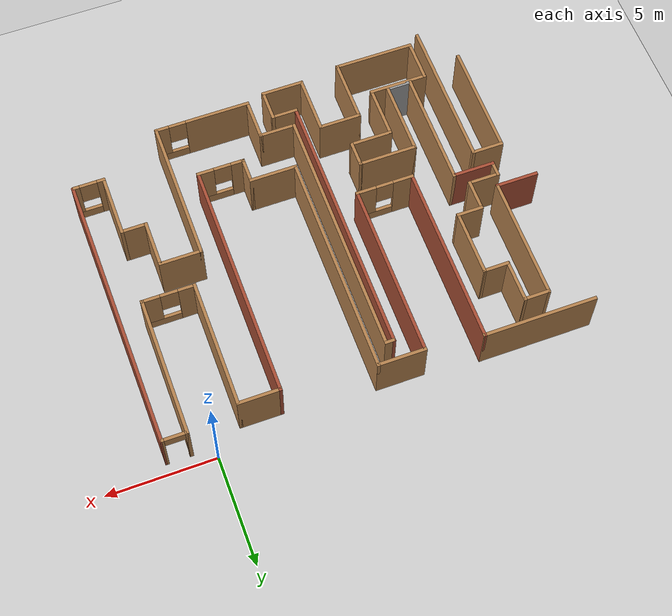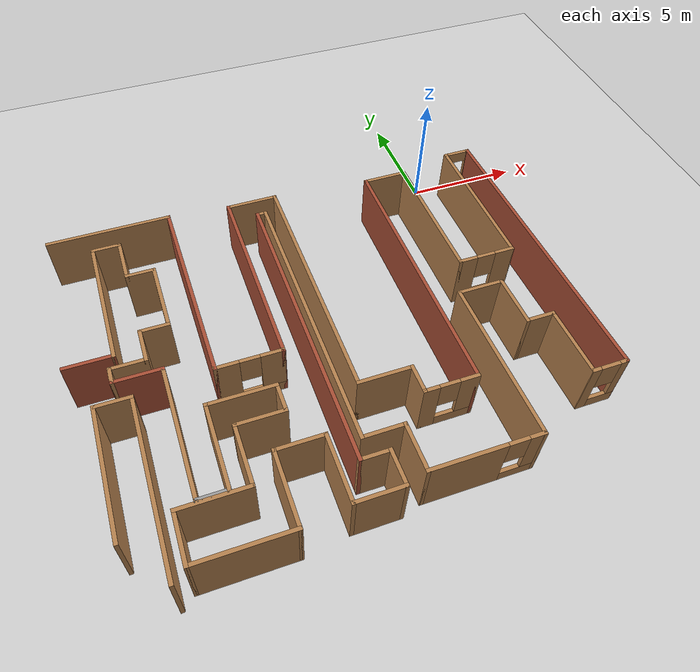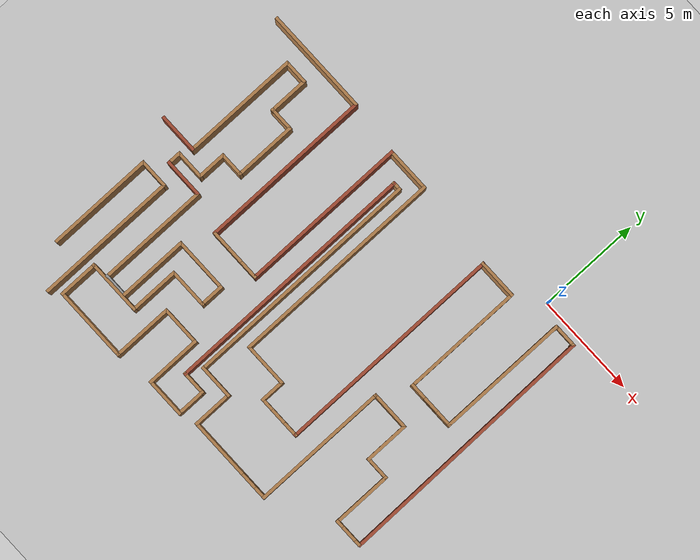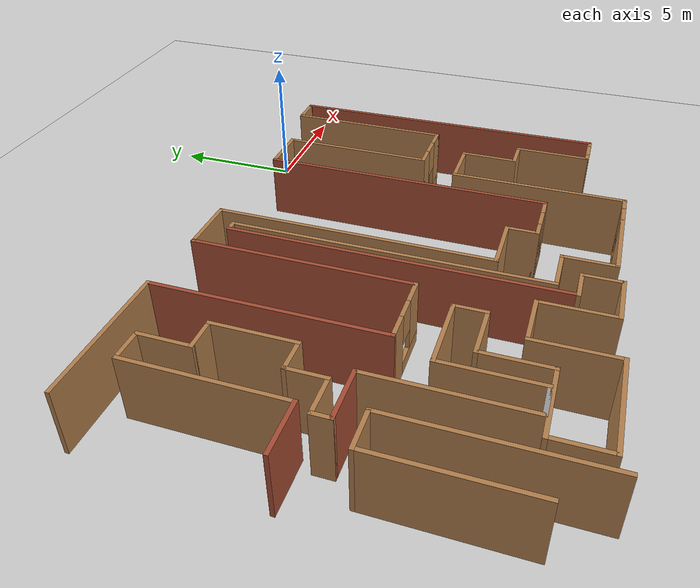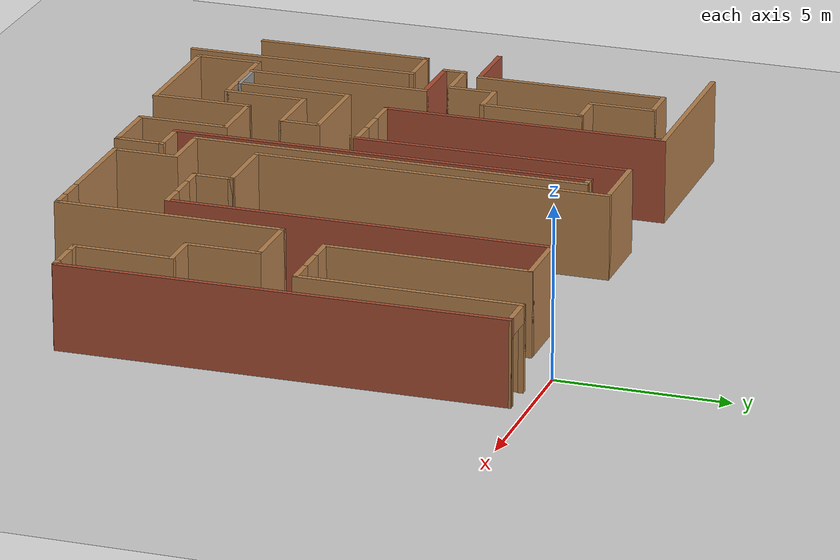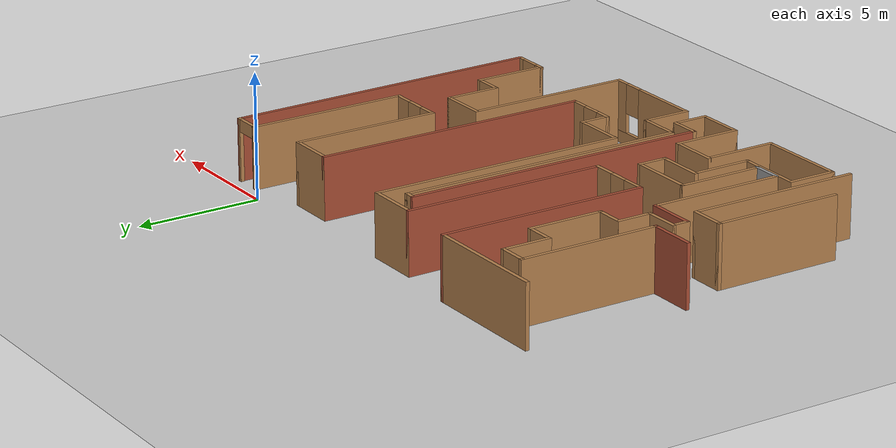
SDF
<sdf version="1.7">
 <world name="default">
  <model name="ground_plane">
   <static>1</static>
   <link name="link">
    <collision name="collision">
     <geometry><plane><normal>0 0 1</normal><size>100 100</size></plane></geometry>
     <surface><friction><ode><mu>100</mu><mu2>50</mu2></ode></friction></surface>
    </collision>
    <visual name="visual">
     <cast_shadows>0</cast_shadows>
     <geometry><plane><normal>0 0 1</normal><size>100 100</size></plane></geometry>
     <material>
      <script><uri>file://media/materials/scripts/gazebo.material</uri><name>Gazebo/Grey</name></script>
     </material>
    </visual>
   </link>
  </model>
  <model name="simple_maze">
   <pose>-16.3821 -8.2673 0 0 -0 0</pose>
   <link name="Wall_100">
    <collision name="Wall_100_Collision">
     <geometry><box><size>1.25 0.15 2.5</size></box></geometry>
     <pose>0 0 1.25 0 -0 0</pose>
    </collision>
    <visual name="Wall_100_Visual">
     <pose>0 0 1.25 0 -0 0</pose>
     <geometry><box><size>1.25 0.15 2.5</size></box></geometry>
     <material>
      <script><uri>file://media/materials/scripts/gazebo.material</uri><name>Gazebo/Wood</name></script>
      <ambient>1 1 1 1</ambient>
     </material>
     <meta><layer>0</layer></meta>
    </visual>
    <pose>2.5834 2.04227 0 0 -0 3.14159</pose>
   </link>
   <link name="Wall_101">
    <collision name="Wall_101_Collision">
     <geometry><box><size>1.5 0.15 2.5</size></box></geometry>
     <pose>0 0 1.25 0 -0 0</pose>
    </collision>
    <visual name="Wall_101_Visual">
     <pose>0 0 1.25 0 -0 0</pose>
     <geometry><box><size>1.5 0.15 2.5</size></box></geometry>
     <material>
      <script><uri>file://media/materials/scripts/gazebo.material</uri><name>Gazebo/Wood</name></script>
      <ambient>1 1 1 1</ambient>
     </material>
     <meta><layer>0</layer></meta>
    </visual>
    <pose>2.0334 1.36727 0 0 -0 -1.5708</pose>
   </link>
   <link name="Wall_102">
    <collision name="Wall_102_Collision">
     <geometry><box><size>1.5 0.15 2.5</size></box></geometry>
     <pose>0 0 1.25 0 -0 0</pose>
    </collision>
    <visual name="Wall_102_Visual">
     <pose>0 0 1.25 0 -0 0</pose>
     <geometry><box><size>1.5 0.15 2.5</size></box></geometry>
     <material>
      <script><uri>file://media/materials/scripts/gazebo.material</uri><name>Gazebo/Wood</name></script>
      <ambient>1 1 1 1</ambient>
     </material>
     <meta><layer>0</layer></meta>
    </visual>
    <pose>1.3584 0.692271 0 0 -0 3.14159</pose>
   </link>
   <link name="Wall_103">
    <collision name="Wall_103_Collision">
     <geometry><box><size>0.75 0.15 2.5</size></box></geometry>
     <pose>0 0 1.25 0 -0 0</pose>
    </collision>
    <visual name="Wall_103_Visual">
     <pose>0 0 1.25 0 -0 0</pose>
     <geometry><box><size>0.75 0.15 2.5</size></box></geometry>
     <material>
      <script><uri>file://media/materials/scripts/gazebo.material</uri><name>Gazebo/Wood</name></script>
      <ambient>1 1 1 1</ambient>
     </material>
     <meta><layer>0</layer></meta>
    </visual>
    <pose>0.683398 0.392271 0 0 -0 -1.5708</pose>
   </link>
   <link name="Wall_104">
    <collision name="Wall_104_Collision">
     <geometry><box><size>2 0.15 2.5</size></box></geometry>
     <pose>0 0 1.25 0 -0 0</pose>
    </collision>
    <visual name="Wall_104_Visual">
     <pose>0 0 1.25 0 -0 0</pose>
     <geometry><box><size>2 0.15 2.5</size></box></geometry>
     <material>
      <script><uri>file://media/materials/scripts/gazebo.material</uri><name>Gazebo/Bricks</name></script>
      <ambient>1 1 1 1</ambient>
     </material>
     <meta><layer>0</layer></meta>
    </visual>
    <pose>1.6084 0.092271 0 0 -0 0</pose>
   </link>
   <link name="Wall_105">
    <collision name="Wall_105_Collision">
     <geometry><box><size>5.5 0.15 2.5</size></box></geometry>
     <pose>0 0 1.25 0 -0 0</pose>
    </collision>
    <visual name="Wall_105_Visual">
     <pose>0 0 1.25 0 -0 0</pose>
     <geometry><box><size>5.5 0.15 2.5</size></box></geometry>
     <material>
      <script><uri>file://media/materials/scripts/gazebo.material</uri><name>Gazebo/Wood</name></script>
      <ambient>1 1 1 1</ambient>
     </material>
     <meta><layer>0</layer></meta>
    </visual>
    <pose>2.5334 -2.58273 0 0 -0 -1.5708</pose>
   </link>
   <link name="Wall_106">
    <collision name="Wall_106_Collision">
     <geometry><box><size>1.25 0.15 2.5</size></box></geometry>
     <pose>0 0 1.25 0 -0 0</pose>
    </collision>
    <visual name="Wall_106_Visual">
     <pose>0 0 1.25 0 -0 0</pose>
     <geometry><box><size>1.25 0.15 2.5</size></box></geometry>
     <material>
      <script><uri>file://media/materials/scripts/gazebo.material</uri><name>Gazebo/Grey</name></script>
      <ambient>1 1 1 1</ambient>
     </material>
     <meta><layer>0</layer></meta>
    </visual>
    <pose>3.0834 -5.25773 0 0 -0 0</pose>
   </link>
   <link name="Wall_107">
    <collision name="Wall_107_Collision">
     <geometry><box><size>3.5 0.15 2.5</size></box></geometry>
     <pose>0 0 1.25 0 -0 0</pose>
    </collision>
    <visual name="Wall_107_Visual">
     <pose>0 0 1.25 0 -0 0</pose>
     <geometry><box><size>3.5 0.15 2.5</size></box></geometry>
     <material>
      <script><uri>file://media/materials/scripts/gazebo.material</uri><name>Gazebo/Wood</name></script>
      <ambient>1 1 1 1</ambient>
     </material>
     <meta><layer>0</layer></meta>
    </visual>
    <pose>3.6334 -3.58273 0 0 -0 1.5708</pose>
   </link>
   <link name="Wall_108">
    <collision name="Wall_108_Collision">
     <geometry><box><size>2.75 0.15 2.5</size></box></geometry>
     <pose>0 0 1.25 0 -0 0</pose>
    </collision>
    <visual name="Wall_108_Visual">
     <pose>0 0 1.25 0 -0 0</pose>
     <geometry><box><size>2.75 0.15 2.5</size></box></geometry>
     <material>
      <script><uri>file://media/materials/scripts/gazebo.material</uri><name>Gazebo/Wood</name></script>
      <ambient>1 1 1 1</ambient>
     </material>
     <meta><layer>0</layer></meta>
    </visual>
    <pose>4.9334 -1.90773 0 0 -0 0</pose>
   </link>
   <link name="Wall_109">
    <collision name="Wall_109_Collision">
     <geometry><box><size>1.25 0.15 2.5</size></box></geometry>
     <pose>0 0 1.25 0 -0 0</pose>
    </collision>
    <visual name="Wall_109_Visual">
     <pose>0 0 1.25 0 -0 0</pose>
     <geometry><box><size>1.25 0.15 2.5</size></box></geometry>
     <material>
      <script><uri>file://media/materials/scripts/gazebo.material</uri><name>Gazebo/Wood</name></script>
      <ambient>1 1 1 1</ambient>
     </material>
     <meta><layer>0</layer></meta>
    </visual>
    <pose>6.2334 -2.45773 0 0 -0 -1.5708</pose>
   </link>
   <link name="Wall_110">
    <collision name="Wall_110_Collision">
     <geometry><box><size>2 0.15 2.5</size></box></geometry>
     <pose>0 0 1.25 0 -0 0</pose>
    </collision>
    <visual name="Wall_110_Visual">
     <pose>0 0 1.25 0 -0 0</pose>
     <geometry><box><size>2 0.15 2.5</size></box></geometry>
     <material>
      <script><uri>file://media/materials/scripts/gazebo.material</uri><name>Gazebo/Wood</name></script>
      <ambient>1 1 1 1</ambient>
     </material>
     <meta><layer>0</layer></meta>
    </visual>
    <pose>5.3084 -3.00773 0 0 -0 3.14159</pose>
   </link>
   <link name="Wall_111">
    <collision name="Wall_111_Collision">
     <geometry><box><size>2.5 0.15 2.5</size></box></geometry>
     <pose>0 0 1.25 0 -0 0</pose>
    </collision>
    <visual name="Wall_111_Visual">
     <pose>0 0 1.25 0 -0 0</pose>
     <geometry><box><size>2.5 0.15 2.5</size></box></geometry>
     <material>
      <script><uri>file://media/materials/scripts/gazebo.material</uri><name>Gazebo/Wood</name></script>
      <ambient>1 1 1 1</ambient>
     </material>
     <meta><layer>0</layer></meta>
    </visual>
    <pose>4.3834 -4.18273 0 0 -0 -1.5708</pose>
   </link>
   <link name="Wall_112">
    <collision name="Wall_112_Collision">
     <geometry><box><size>2.75 0.15 2.5</size></box></geometry>
     <pose>0 0 1.25 0 -0 0</pose>
    </collision>
    <visual name="Wall_112_Visual">
     <pose>0 0 1.25 0 -0 0</pose>
     <geometry><box><size>2.75 0.15 2.5</size></box></geometry>
     <material>
      <script><uri>file://media/materials/scripts/gazebo.material</uri><name>Gazebo/Wood</name></script>
      <ambient>1 1 1 1</ambient>
     </material>
     <meta><layer>0</layer></meta>
    </visual>
    <pose>3.0834 -5.35773 0 0 -0 3.14159</pose>
   </link>
   <link name="Wall_113">
    <collision name="Wall_113_Collision">
     <geometry><box><size>2 0.15 2.5</size></box></geometry>
     <pose>0 0 1.25 0 -0 0</pose>
    </collision>
    <visual name="Wall_113_Visual">
     <pose>0 0 1.25 0 -0 0</pose>
     <geometry><box><size>2 0.15 2.5</size></box></geometry>
     <material>
      <script><uri>file://media/materials/scripts/gazebo.material</uri><name>Gazebo/Wood</name></script>
      <ambient>1 1 1 1</ambient>
     </material>
     <meta><layer>0</layer></meta>
    </visual>
    <pose>1.7834 -6.28273 0 0 -0 -1.5708</pose>
   </link>
   <link name="Wall_114">
    <collision name="Wall_114_Collision">
     <geometry><box><size>3.75 0.15 2.5</size></box></geometry>
     <pose>0 0 1.25 0 -0 0</pose>
    </collision>
    <visual name="Wall_114_Visual">
     <pose>0 0 1.25 0 -0 0</pose>
     <geometry><box><size>3.75 0.15 2.5</size></box></geometry>
     <material>
      <script><uri>file://media/materials/scripts/gazebo.material</uri><name>Gazebo/Wood</name></script>
      <ambient>1 1 1 1</ambient>
     </material>
     <meta><layer>0</layer></meta>
    </visual>
    <pose>3.5834 -7.20773 0 0 -0 0</pose>
   </link>
   <link name="Wall_115">
    <collision name="Wall_115_Collision">
     <geometry><box><size>3 0.15 2.5</size></box></geometry>
     <pose>0 0 1.25 0 -0 0</pose>
    </collision>
    <visual name="Wall_115_Visual">
     <pose>0 0 1.25 0 -0 0</pose>
     <geometry><box><size>3 0.15 2.5</size></box></geometry>
     <material>
      <script><uri>file://media/materials/scripts/gazebo.material</uri><name>Gazebo/Wood</name></script>
      <ambient>1 1 1 1</ambient>
     </material>
     <meta><layer>0</layer></meta>
    </visual>
    <pose>5.3834 -5.78273 0 0 -0 1.5708</pose>
   </link>
   <link name="Wall_116">
    <collision name="Wall_116_Collision">
     <geometry><box><size>2 0.15 2.5</size></box></geometry>
     <pose>0 0 1.25 0 -0 0</pose>
    </collision>
    <visual name="Wall_116_Visual">
     <pose>0 0 1.25 0 -0 0</pose>
     <geometry><box><size>2 0.15 2.5</size></box></geometry>
     <material>
      <script><uri>file://media/materials/scripts/gazebo.material</uri><name>Gazebo/Wood</name></script>
      <ambient>1 1 1 1</ambient>
     </material>
     <meta><layer>0</layer></meta>
    </visual>
    <pose>6.3084 -4.35773 0 0 -0 0</pose>
   </link>
   <link name="Wall_117">
    <collision name="Wall_117_Collision">
     <geometry><box><size>2.75 0.15 2.5</size></box></geometry>
     <pose>0 0 1.25 0 -0 0</pose>
    </collision>
    <visual name="Wall_117_Visual">
     <pose>0 0 1.25 0 -0 0</pose>
     <geometry><box><size>2.75 0.15 2.5</size></box></geometry>
     <material>
      <script><uri>file://media/materials/scripts/gazebo.material</uri><name>Gazebo/Wood</name></script>
      <ambient>1 1 1 1</ambient>
     </material>
     <meta><layer>0</layer></meta>
    </visual>
    <pose>7.2334 -5.65773 0 0 -0 -1.5708</pose>
   </link>
   <link name="Wall_118">
    <collision name="Wall_118_Collision">
     <geometry><box><size>2 0.15 2.5</size></box></geometry>
     <pose>0 0 1.25 0 -0 0</pose>
    </collision>
    <visual name="Wall_118_Visual">
     <pose>0 0 1.25 0 -0 0</pose>
     <geometry><box><size>2 0.15 2.5</size></box></geometry>
     <material>
      <script><uri>file://media/materials/scripts/gazebo.material</uri><name>Gazebo/Wood</name></script>
      <ambient>1 1 1 1</ambient>
     </material>
     <meta><layer>0</layer></meta>
    </visual>
    <pose>8.1584 -6.95773 0 0 -0 0</pose>
   </link>
   <link name="Wall_119">
    <collision name="Wall_119_Collision">
     <geometry><box><size>1.5 0.15 2.5</size></box></geometry>
     <pose>0 0 1.25 0 -0 0</pose>
    </collision>
    <visual name="Wall_119_Visual">
     <pose>0 0 1.25 0 -0 0</pose>
     <geometry><box><size>1.5 0.15 2.5</size></box></geometry>
     <material>
      <script><uri>file://media/materials/scripts/gazebo.material</uri><name>Gazebo/Wood</name></script>
      <ambient>1 1 1 1</ambient>
     </material>
     <meta><layer>0</layer></meta>
    </visual>
    <pose>9.0834 -6.28273 0 0 -0 1.5708</pose>
   </link>
   <link name="Wall_120">
    <collision name="Wall_120_Collision">
     <geometry><box><size>1.25 0.15 2.5</size></box></geometry>
     <pose>0 0 1.25 0 -0 0</pose>
    </collision>
    <visual name="Wall_120_Visual">
     <pose>0 0 1.25 0 -0 0</pose>
     <geometry><box><size>1.25 0.15 2.5</size></box></geometry>
     <material>
      <script><uri>file://media/materials/scripts/gazebo.material</uri><name>Gazebo/Wood</name></script>
      <ambient>1 1 1 1</ambient>
     </material>
     <meta><layer>0</layer></meta>
    </visual>
    <pose>8.5334 -5.60773 0 0 -0 3.14159</pose>
   </link>
   <link name="Wall_121">
    <collision name="Wall_121_Collision">
     <geometry><box><size>12.5 0.15 2.5</size></box></geometry>
     <pose>0 0 1.25 0 -0 0</pose>
    </collision>
    <visual name="Wall_121_Visual">
     <pose>0 0 1.25 0 -0 0</pose>
     <geometry><box><size>12.5 0.15 2.5</size></box></geometry>
     <material>
      <script><uri>file://media/materials/scripts/gazebo.material</uri><name>Gazebo/Bricks</name></script>
      <ambient>1 1 1 1</ambient>
     </material>
     <meta><layer>0</layer></meta>
    </visual>
    <pose>7.9834 0.567271 0 0 -0 1.5708</pose>
   </link>
   <link name="Wall_122">
    <collision name="Wall_122_Collision">
     <geometry><box><size>0.5 0.15 2.5</size></box></geometry>
     <pose>0 0 1.25 0 -0 0</pose>
    </collision>
    <visual name="Wall_122_Visual">
     <pose>0 0 1.25 0 -0 0</pose>
     <geometry><box><size>0.5 0.15 2.5</size></box></geometry>
     <material>
      <script><uri>file://media/materials/scripts/gazebo.material</uri><name>Gazebo/Wood</name></script>
      <ambient>1 1 1 1</ambient>
     </material>
     <meta><layer>0</layer></meta>
    </visual>
    <pose>8.1584 6.74227 0 0 -0 0</pose>
   </link>
   <link name="Wall_123">
    <collision name="Wall_123_Collision">
     <geometry><box><size>11.75 0.15 2.5</size></box></geometry>
     <pose>0 0 1.25 0 -0 0</pose>
    </collision>
    <visual name="Wall_123_Visual">
     <pose>0 0 1.25 0 -0 0</pose>
     <geometry><box><size>11.75 0.15 2.5</size></box></geometry>
     <material>
      <script><uri>file://media/materials/scripts/gazebo.material</uri><name>Gazebo/Wood</name></script>
      <ambient>1 1 1 1</ambient>
     </material>
     <meta><layer>0</layer></meta>
    </visual>
    <pose>8.3334 0.942271 0 0 -0 -1.5708</pose>
   </link>
   <link name="Wall_124">
    <collision name="Wall_124_Collision">
     <geometry><box><size>1.75 0.15 2.5</size></box></geometry>
     <pose>0 0 1.25 0 -0 0</pose>
    </collision>
    <visual name="Wall_124_Visual">
     <pose>0 0 1.25 0 -0 0</pose>
     <geometry><box><size>1.75 0.15 2.5</size></box></geometry>
     <material>
      <script><uri>file://media/materials/scripts/gazebo.material</uri><name>Gazebo/Wood</name></script>
      <ambient>1 1 1 1</ambient>
     </material>
     <meta><layer>0</layer></meta>
    </visual>
    <pose>9.1334 -4.85773 0 0 -0 0</pose>
   </link>
   <link name="Wall_125">
    <collision name="Wall_125_Collision">
     <geometry><box><size>2 0.15 2.5</size></box></geometry>
     <pose>0 0 1.25 0 -0 0</pose>
    </collision>
    <visual name="Wall_125_Visual">
     <pose>0 0 1.25 0 -0 0</pose>
     <geometry><box><size>2 0.15 2.5</size></box></geometry>
     <material>
      <script><uri>file://media/materials/scripts/gazebo.material</uri><name>Gazebo/Wood</name></script>
      <ambient>1 1 1 1</ambient>
     </material>
     <meta><layer>0</layer></meta>
    </visual>
    <pose>9.9334 -5.78273 0 0 -0 -1.5708</pose>
   </link>
   <link name="Wall_126">
    <pose>12.1084 -6.70773 0 0 -0 0</pose>
    <visual name="Wall_126_Visual_0">
     <pose>-0.728212 0 1.25 0 -0 0</pose>
     <geometry><box><size>3.04358 0.15 2.5</size></box></geometry>
     <material>
      <script><uri>file://media/materials/scripts/gazebo.material</uri><name>Gazebo/Wood</name></script>
      <ambient>1 1 1 1</ambient>
     </material>
     <meta><layer>0</layer></meta>
    </visual>
    <collision name="Wall_126_Collision_0">
     <geometry><box><size>3.04358 0.15 2.5</size></box></geometry>
     <pose>-0.728212 0 1.25 0 -0 0</pose>
    </collision>
    <visual name="Wall_126_Visual_1">
     <pose>1.52179 0 0.25 0 -0 0</pose>
     <geometry><box><size>1.45642 0.15 0.5</size></box></geometry>
     <material>
      <script><uri>file://media/materials/scripts/gazebo.material</uri><name>Gazebo/Wood</name></script>
      <ambient>1 1 1 1</ambient>
     </material>
     <meta><layer>0</layer></meta>
    </visual>
    <collision name="Wall_126_Collision_1">
     <geometry><box><size>1.45642 0.15 0.5</size></box></geometry>
     <pose>1.52179 0 0.25 0 -0 0</pose>
    </collision>
    <visual name="Wall_126_Visual_2">
     <pose>1.92179 0 1.5 0 -0 0</pose>
     <geometry><box><size>0.656423 0.15 2</size></box></geometry>
     <material>
      <script><uri>file://media/materials/scripts/gazebo.material</uri><name>Gazebo/Wood</name></script>
      <ambient>1 1 1 1</ambient>
     </material>
     <meta><layer>0</layer></meta>
    </visual>
    <collision name="Wall_126_Collision_2">
     <geometry><box><size>0.656423 0.15 2</size></box></geometry>
     <pose>1.92179 0 1.5 0 -0 0</pose>
    </collision>
    <visual name="Wall_126_Visual_3">
     <pose>1.19358 0 1.9 0 -0 0</pose>
     <geometry><box><size>0.8 0.15 1.2</size></box></geometry>
     <material>
      <script><uri>file://media/materials/scripts/gazebo.material</uri><name>Gazebo/Wood</name></script>
      <ambient>1 1 1 1</ambient>
     </material>
     <meta><layer>0</layer></meta>
    </visual>
    <collision name="Wall_126_Collision_3">
     <geometry><box><size>0.8 0.15 1.2</size></box></geometry>
     <pose>1.19358 0 1.9 0 -0 0</pose>
    </collision>
   </link>
   <link name="Wall_127">
    <collision name="Wall_127_Collision">
     <geometry><box><size>6.75 0.15 2.5</size></box></geometry>
     <pose>0 0 1.25 0 -0 0</pose>
    </collision>
    <visual name="Wall_127_Visual">
     <pose>0 0 1.25 0 -0 0</pose>
     <geometry><box><size>6.75 0.15 2.5</size></box></geometry>
     <material>
      <script><uri>file://media/materials/scripts/gazebo.material</uri><name>Gazebo/Wood</name></script>
      <ambient>1 1 1 1</ambient>
     </material>
     <meta><layer>0</layer></meta>
    </visual>
    <pose>14.2834 -3.40773 0 0 -0 1.5708</pose>
   </link>
   <link name="Wall_128">
    <collision name="Wall_128_Collision">
     <geometry><box><size>2 0.15 2.5</size></box></geometry>
     <pose>0 0 1.25 0 -0 0</pose>
    </collision>
    <visual name="Wall_128_Visual">
     <pose>0 0 1.25 0 -0 0</pose>
     <geometry><box><size>2 0.15 2.5</size></box></geometry>
     <material>
      <script><uri>file://media/materials/scripts/gazebo.material</uri><name>Gazebo/Wood</name></script>
      <ambient>1 1 1 1</ambient>
     </material>
     <meta><layer>0</layer></meta>
    </visual>
    <pose>15.2084 -0.107729 0 0 -0 0</pose>
   </link>
   <link name="Wall_129">
    <collision name="Wall_129_Collision">
     <geometry><box><size>2.25 0.15 2.5</size></box></geometry>
     <pose>0 0 1.25 0 -0 0</pose>
    </collision>
    <visual name="Wall_129_Visual">
     <pose>0 0 1.25 0 -0 0</pose>
     <geometry><box><size>2.25 0.15 2.5</size></box></geometry>
     <material>
      <script><uri>file://media/materials/scripts/gazebo.material</uri><name>Gazebo/Wood</name></script>
      <ambient>1 1 1 1</ambient>
     </material>
     <meta><layer>0</layer></meta>
    </visual>
    <pose>16.1334 -1.15773 0 0 -0 -1.5708</pose>
   </link>
   <link name="Wall_132">
    <collision name="Wall_132_Collision">
     <geometry><box><size>1.25 0.15 2.5</size></box></geometry>
     <pose>0 0 1.25 0 -0 0</pose>
    </collision>
    <visual name="Wall_132_Visual">
     <pose>0 0 1.25 0 -0 0</pose>
     <geometry><box><size>1.25 0.15 2.5</size></box></geometry>
     <material>
      <script><uri>file://media/materials/scripts/gazebo.material</uri><name>Gazebo/Wood</name></script>
      <ambient>1 1 1 1</ambient>
     </material>
     <meta><layer>0</layer></meta>
    </visual>
    <pose>16.6834 -2.20773 0 0 -0 0</pose>
   </link>
   <link name="Wall_133">
    <collision name="Wall_133_Collision">
     <geometry><box><size>2.94839 0.15 2.5</size></box></geometry>
     <pose>0 0 1.25 0 -0 0</pose>
    </collision>
    <visual name="Wall_133_Visual">
     <pose>0 0 1.25 0 -0 0</pose>
     <geometry><box><size>2.94839 0.15 2.5</size></box></geometry>
     <material>
      <script><uri>file://media/materials/scripts/gazebo.material</uri><name>Gazebo/Wood</name></script>
      <ambient>1 1 1 1</ambient>
     </material>
     <meta><layer>0</layer></meta>
    </visual>
    <pose>17.2334 -3.60692 0 0 -0 -1.5708</pose>
   </link>
   <link name="Wall_134">
    <pose>17.9084 -5.04129 0 0 -0 0</pose>
    <visual name="Wall_134_Visual_0">
     <pose>-0.552015 0 1.25 0 -0 0</pose>
     <geometry><box><size>0.395969 0.15 2.5</size></box></geometry>
     <material>
      <script><uri>file://media/materials/scripts/gazebo.material</uri><name>Gazebo/Wood</name></script>
      <ambient>1 1 1 1</ambient>
     </material>
     <meta><layer>0</layer></meta>
    </visual>
    <collision name="Wall_134_Collision_0">
     <geometry><box><size>0.395969 0.15 2.5</size></box></geometry>
     <pose>-0.552015 0 1.25 0 -0 0</pose>
    </collision>
    <visual name="Wall_134_Visual_1">
     <pose>0.197985 0 0.25 0 -0 0</pose>
     <geometry><box><size>1.10403 0.15 0.5</size></box></geometry>
     <material>
      <script><uri>file://media/materials/scripts/gazebo.material</uri><name>Gazebo/Wood</name></script>
      <ambient>1 1 1 1</ambient>
     </material>
     <meta><layer>0</layer></meta>
    </visual>
    <collision name="Wall_134_Collision_1">
     <geometry><box><size>1.10403 0.15 0.5</size></box></geometry>
     <pose>0.197985 0 0.25 0 -0 0</pose>
    </collision>
    <visual name="Wall_134_Visual_2">
     <pose>0.597985 0 1.5 0 -0 0</pose>
     <geometry><box><size>0.304031 0.15 2</size></box></geometry>
     <material>
      <script><uri>file://media/materials/scripts/gazebo.material</uri><name>Gazebo/Wood</name></script>
      <ambient>1 1 1 1</ambient>
     </material>
     <meta><layer>0</layer></meta>
    </visual>
    <collision name="Wall_134_Collision_2">
     <geometry><box><size>0.304031 0.15 2</size></box></geometry>
     <pose>0.597985 0 1.5 0 -0 0</pose>
    </collision>
    <visual name="Wall_134_Visual_3">
     <pose>0.045969 0 1.9 0 -0 0</pose>
     <geometry><box><size>0.8 0.15 1.2</size></box></geometry>
     <material>
      <script><uri>file://media/materials/scripts/gazebo.material</uri><name>Gazebo/Wood</name></script>
      <ambient>1 1 1 1</ambient>
     </material>
     <meta><layer>0</layer></meta>
    </visual>
    <collision name="Wall_134_Collision_3">
     <geometry><box><size>0.8 0.15 1.2</size></box></geometry>
     <pose>0.045969 0 1.9 0 -0 0</pose>
    </collision>
   </link>
   <link name="Wall_41">
    <collision name="Wall_41_Collision">
     <geometry><box><size>5.25 0.15 2.5</size></box></geometry>
     <pose>0 0 1.25 0 -0 0</pose>
    </collision>
    <visual name="Wall_41_Visual">
     <pose>0 0 1.25 0 -0 0</pose>
     <geometry><box><size>5.25 0.15 2.5</size></box></geometry>
     <material>
      <script><uri>file://media/materials/scripts/gazebo.material</uri><name>Gazebo/Wood</name></script>
      <ambient>1 1 1 1</ambient>
     </material>
     <meta><layer>0</layer></meta>
    </visual>
    <pose>1.75518 7.83737 0 0 -0 0</pose>
   </link>
   <link name="Wall_42">
    <collision name="Wall_42_Collision">
     <geometry><box><size>8.5 0.15 2.5</size></box></geometry>
     <pose>0 0 1.25 0 -0 0</pose>
    </collision>
    <visual name="Wall_42_Visual">
     <pose>0 0 1.25 0 -0 0</pose>
     <geometry><box><size>8.5 0.15 2.5</size></box></geometry>
     <material>
      <script><uri>file://media/materials/scripts/gazebo.material</uri><name>Gazebo/Bricks</name></script>
      <ambient>1 1 1 1</ambient>
     </material>
     <meta><layer>0</layer></meta>
    </visual>
    <pose>4.30518 3.66237 0 0 -0 -1.5708</pose>
   </link>
   <link name="Wall_43">
    <pose>5.60518 -0.51263 0 0 -0 0</pose>
    <visual name="Wall_43_Visual_0">
     <pose>-0.882385 0 1.25 0 -0 0</pose>
     <geometry><box><size>0.985231 0.15 2.5</size></box></geometry>
     <material>
      <script><uri>file://media/materials/scripts/gazebo.material</uri><name>Gazebo/Wood</name></script>
      <ambient>1 1 1 1</ambient>
     </material>
     <meta><layer>0</layer></meta>
    </visual>
    <collision name="Wall_43_Collision_0">
     <geometry><box><size>0.985231 0.15 2.5</size></box></geometry>
     <pose>-0.882385 0 1.25 0 -0 0</pose>
    </collision>
    <visual name="Wall_43_Visual_1">
     <pose>0.492615 0 0.25 0 -0 0</pose>
     <geometry><box><size>1.76477 0.15 0.5</size></box></geometry>
     <material>
      <script><uri>file://media/materials/scripts/gazebo.material</uri><name>Gazebo/Wood</name></script>
      <ambient>1 1 1 1</ambient>
     </material>
     <meta><layer>0</layer></meta>
    </visual>
    <collision name="Wall_43_Collision_1">
     <geometry><box><size>1.76477 0.15 0.5</size></box></geometry>
     <pose>0.492615 0 0.25 0 -0 0</pose>
    </collision>
    <visual name="Wall_43_Visual_2">
     <pose>0.892615 0 1.5 0 -0 0</pose>
     <geometry><box><size>0.964769 0.15 2</size></box></geometry>
     <material>
      <script><uri>file://media/materials/scripts/gazebo.material</uri><name>Gazebo/Wood</name></script>
      <ambient>1 1 1 1</ambient>
     </material>
     <meta><layer>0</layer></meta>
    </visual>
    <collision name="Wall_43_Collision_2">
     <geometry><box><size>0.964769 0.15 2</size></box></geometry>
     <pose>0.892615 0 1.5 0 -0 0</pose>
    </collision>
    <visual name="Wall_43_Visual_3">
     <pose>0.010231 0 1.9 0 -0 0</pose>
     <geometry><box><size>0.8 0.15 1.2</size></box></geometry>
     <material>
      <script><uri>file://media/materials/scripts/gazebo.material</uri><name>Gazebo/Wood</name></script>
      <ambient>1 1 1 1</ambient>
     </material>
     <meta><layer>0</layer></meta>
    </visual>
    <collision name="Wall_43_Collision_3">
     <geometry><box><size>0.8 0.15 1.2</size></box></geometry>
     <pose>0.010231 0 1.9 0 -0 0</pose>
    </collision>
   </link>
   <link name="Wall_44">
    <collision name="Wall_44_Collision">
     <geometry><box><size>8.25 0.15 2.5</size></box></geometry>
     <pose>0 0 1.25 0 -0 0</pose>
    </collision>
    <visual name="Wall_44_Visual">
     <pose>0 0 1.25 0 -0 0</pose>
     <geometry><box><size>8.25 0.15 2.5</size></box></geometry>
     <material>
      <script><uri>file://media/materials/scripts/gazebo.material</uri><name>Gazebo/Bricks</name></script>
      <ambient>1 1 1 1</ambient>
     </material>
     <meta><layer>0</layer></meta>
    </visual>
    <pose>6.90518 3.53737 0 0 -0 1.5708</pose>
   </link>
   <link name="Wall_45">
    <collision name="Wall_45_Collision">
     <geometry><box><size>2.25 0.15 2.5</size></box></geometry>
     <pose>0 0 1.25 0 -0 0</pose>
    </collision>
    <visual name="Wall_45_Visual">
     <pose>0 0 1.25 0 -0 0</pose>
     <geometry><box><size>2.25 0.15 2.5</size></box></geometry>
     <material>
      <script><uri>file://media/materials/scripts/gazebo.material</uri><name>Gazebo/Wood</name></script>
      <ambient>1 1 1 1</ambient>
     </material>
     <meta><layer>0</layer></meta>
    </visual>
    <pose>7.95518 7.58737 0 0 -0 0</pose>
   </link>
   <link name="Wall_46">
    <collision name="Wall_46_Collision">
     <geometry><box><size>10.5 0.15 2.5</size></box></geometry>
     <pose>0 0 1.25 0 -0 0</pose>
    </collision>
    <visual name="Wall_46_Visual">
     <pose>0 0 1.25 0 -0 0</pose>
     <geometry><box><size>10.5 0.15 2.5</size></box></geometry>
     <material>
      <script><uri>file://media/materials/scripts/gazebo.material</uri><name>Gazebo/Wood</name></script>
      <ambient>1 1 1 1</ambient>
     </material>
     <meta><layer>0</layer></meta>
    </visual>
    <pose>9.00518 2.41237 0 0 -0 -1.5708</pose>
   </link>
   <link name="Wall_47">
    <collision name="Wall_47_Collision">
     <geometry><box><size>2.25 0.15 2.5</size></box></geometry>
     <pose>0 0 1.25 0 -0 0</pose>
    </collision>
    <visual name="Wall_47_Visual">
     <pose>0 0 1.25 0 -0 0</pose>
     <geometry><box><size>2.25 0.15 2.5</size></box></geometry>
     <material>
      <script><uri>file://media/materials/scripts/gazebo.material</uri><name>Gazebo/Wood</name></script>
      <ambient>1 1 1 1</ambient>
     </material>
     <meta><layer>0</layer></meta>
    </visual>
    <pose>10.0552 -2.76263 0 0 -0 0</pose>
   </link>
   <link name="Wall_48">
    <collision name="Wall_48_Collision">
     <geometry><box><size>1.25 0.15 2.5</size></box></geometry>
     <pose>0 0 1.25 0 -0 0</pose>
    </collision>
    <visual name="Wall_48_Visual">
     <pose>0 0 1.25 0 -0 0</pose>
     <geometry><box><size>1.25 0.15 2.5</size></box></geometry>
     <material>
      <script><uri>file://media/materials/scripts/gazebo.material</uri><name>Gazebo/Wood</name></script>
      <ambient>1 1 1 1</ambient>
     </material>
     <meta><layer>0</layer></meta>
    </visual>
    <pose>11.1052 -3.31263 0 0 -0 -1.5708</pose>
   </link>
   <link name="Wall_49">
    <pose>12.1552 -3.86263 0 0 -0 0</pose>
    <visual name="Wall_49_Visual_0">
     <pose>-0.795938 0 1.25 0 -0 0</pose>
     <geometry><box><size>0.658124 0.15 2.5</size></box></geometry>
     <material>
      <script><uri>file://media/materials/scripts/gazebo.material</uri><name>Gazebo/Wood</name></script>
      <ambient>1 1 1 1</ambient>
     </material>
     <meta><layer>0</layer></meta>
    </visual>
    <collision name="Wall_49_Collision_0">
     <geometry><box><size>0.658124 0.15 2.5</size></box></geometry>
     <pose>-0.795938 0 1.25 0 -0 0</pose>
    </collision>
    <visual name="Wall_49_Visual_1">
     <pose>0.329062 0 0.25 0 -0 0</pose>
     <geometry><box><size>1.59188 0.15 0.5</size></box></geometry>
     <material>
      <script><uri>file://media/materials/scripts/gazebo.material</uri><name>Gazebo/Wood</name></script>
      <ambient>1 1 1 1</ambient>
     </material>
     <meta><layer>0</layer></meta>
    </visual>
    <collision name="Wall_49_Collision_1">
     <geometry><box><size>1.59188 0.15 0.5</size></box></geometry>
     <pose>0.329062 0 0.25 0 -0 0</pose>
    </collision>
    <visual name="Wall_49_Visual_2">
     <pose>0.729062 0 1.5 0 -0 0</pose>
     <geometry><box><size>0.791876 0.15 2</size></box></geometry>
     <material>
      <script><uri>file://media/materials/scripts/gazebo.material</uri><name>Gazebo/Wood</name></script>
      <ambient>1 1 1 1</ambient>
     </material>
     <meta><layer>0</layer></meta>
    </visual>
    <collision name="Wall_49_Collision_2">
     <geometry><box><size>0.791876 0.15 2</size></box></geometry>
     <pose>0.729062 0 1.5 0 -0 0</pose>
    </collision>
    <visual name="Wall_49_Visual_3">
     <pose>-0.066876 0 1.9 0 -0 0</pose>
     <geometry><box><size>0.8 0.15 1.2</size></box></geometry>
     <material>
      <script><uri>file://media/materials/scripts/gazebo.material</uri><name>Gazebo/Wood</name></script>
      <ambient>1 1 1 1</ambient>
     </material>
     <meta><layer>0</layer></meta>
    </visual>
    <collision name="Wall_49_Collision_3">
     <geometry><box><size>0.8 0.15 1.2</size></box></geometry>
     <pose>-0.066876 0 1.9 0 -0 0</pose>
    </collision>
   </link>
   <link name="Wall_50">
    <collision name="Wall_50_Collision">
     <geometry><box><size>11.25 0.15 2.5</size></box></geometry>
     <pose>0 0 1.25 0 -0 0</pose>
    </collision>
    <visual name="Wall_50_Visual">
     <pose>0 0 1.25 0 -0 0</pose>
     <geometry><box><size>11.25 0.15 2.5</size></box></geometry>
     <material>
      <script><uri>file://media/materials/scripts/gazebo.material</uri><name>Gazebo/Bricks</name></script>
      <ambient>1 1 1 1</ambient>
     </material>
     <meta><layer>0</layer></meta>
    </visual>
    <pose>13.2052 1.68737 0 0 -0 1.5708</pose>
   </link>
   <link name="Wall_51">
    <collision name="Wall_51_Collision">
     <geometry><box><size>2 0.15 2.5</size></box></geometry>
     <pose>0 0 1.25 0 -0 0</pose>
    </collision>
    <visual name="Wall_51_Visual">
     <pose>0 0 1.25 0 -0 0</pose>
     <geometry><box><size>2 0.15 2.5</size></box></geometry>
     <material>
      <script><uri>file://media/materials/scripts/gazebo.material</uri><name>Gazebo/Wood</name></script>
      <ambient>1 1 1 1</ambient>
     </material>
     <meta><layer>0</layer></meta>
    </visual>
    <pose>14.1302 7.23737 0 0 -0 0</pose>
   </link>
   <link name="Wall_52">
    <collision name="Wall_52_Collision">
     <geometry><box><size>6 0.15 2.5</size></box></geometry>
     <pose>0 0 1.25 0 -0 0</pose>
    </collision>
    <visual name="Wall_52_Visual">
     <pose>0 0 1.25 0 -0 0</pose>
     <geometry><box><size>6 0.15 2.5</size></box></geometry>
     <material>
      <script><uri>file://media/materials/scripts/gazebo.material</uri><name>Gazebo/Wood</name></script>
      <ambient>1 1 1 1</ambient>
     </material>
     <meta><layer>0</layer></meta>
    </visual>
    <pose>15.0552 4.31237 0 0 -0 -1.5708</pose>
   </link>
   <link name="Wall_53">
    <pose>16.2302 1.38737 0 0 -0 0</pose>
    <visual name="Wall_53_Visual_0">
     <pose>-0.832704 0 1.25 0 -0 0</pose>
     <geometry><box><size>0.834592 0.15 2.5</size></box></geometry>
     <material>
      <script><uri>file://media/materials/scripts/gazebo.material</uri><name>Gazebo/Wood</name></script>
      <ambient>1 1 1 1</ambient>
     </material>
     <meta><layer>0</layer></meta>
    </visual>
    <collision name="Wall_53_Collision_0">
     <geometry><box><size>0.834592 0.15 2.5</size></box></geometry>
     <pose>-0.832704 0 1.25 0 -0 0</pose>
    </collision>
    <visual name="Wall_53_Visual_1">
     <pose>0.417296 0 0.25 0 -0 0</pose>
     <geometry><box><size>1.66541 0.15 0.5</size></box></geometry>
     <material>
      <script><uri>file://media/materials/scripts/gazebo.material</uri><name>Gazebo/Wood</name></script>
      <ambient>1 1 1 1</ambient>
     </material>
     <meta><layer>0</layer></meta>
    </visual>
    <collision name="Wall_53_Collision_1">
     <geometry><box><size>1.66541 0.15 0.5</size></box></geometry>
     <pose>0.417296 0 0.25 0 -0 0</pose>
    </collision>
    <visual name="Wall_53_Visual_2">
     <pose>0.817296 0 1.5 0 -0 0</pose>
     <geometry><box><size>0.865408 0.15 2</size></box></geometry>
     <material>
      <script><uri>file://media/materials/scripts/gazebo.material</uri><name>Gazebo/Wood</name></script>
      <ambient>1 1 1 1</ambient>
     </material>
     <meta><layer>0</layer></meta>
    </visual>
    <collision name="Wall_53_Collision_2">
     <geometry><box><size>0.865408 0.15 2</size></box></geometry>
     <pose>0.817296 0 1.5 0 -0 0</pose>
    </collision>
    <visual name="Wall_53_Visual_3">
     <pose>-0.015408 0 1.9 0 -0 0</pose>
     <geometry><box><size>0.8 0.15 1.2</size></box></geometry>
     <material>
      <script><uri>file://media/materials/scripts/gazebo.material</uri><name>Gazebo/Wood</name></script>
      <ambient>1 1 1 1</ambient>
     </material>
     <meta><layer>0</layer></meta>
    </visual>
    <collision name="Wall_53_Collision_3">
     <geometry><box><size>0.8 0.15 1.2</size></box></geometry>
     <pose>-0.015408 0 1.9 0 -0 0</pose>
    </collision>
   </link>
   <link name="Wall_54">
    <collision name="Wall_54_Collision">
     <geometry><box><size>6.5 0.15 2.5</size></box></geometry>
     <pose>0 0 1.25 0 -0 0</pose>
    </collision>
    <visual name="Wall_54_Visual">
     <pose>0 0 1.25 0 -0 0</pose>
     <geometry><box><size>6.5 0.15 2.5</size></box></geometry>
     <material>
      <script><uri>file://media/materials/scripts/gazebo.material</uri><name>Gazebo/Wood</name></script>
      <ambient>1 1 1 1</ambient>
     </material>
     <meta><layer>0</layer></meta>
    </visual>
    <pose>17.4052 4.56237 0 0 -0 1.5708</pose>
   </link>
   <link name="Wall_55">
    <pose>17.9552 7.73737 0 0 -0 0</pose>
    <visual name="Wall_55_Visual_0">
     <pose>-0.537909 0 1.25 0 -0 0</pose>
     <geometry><box><size>0.174182 0.15 2.5</size></box></geometry>
     <material>
      <script><uri>file://media/materials/scripts/gazebo.material</uri><name>Gazebo/Wood</name></script>
      <ambient>1 1 1 1</ambient>
     </material>
     <meta><layer>0</layer></meta>
    </visual>
    <collision name="Wall_55_Collision_0">
     <geometry><box><size>0.174182 0.15 2.5</size></box></geometry>
     <pose>-0.537909 0 1.25 0 -0 0</pose>
    </collision>
    <visual name="Wall_55_Visual_1">
     <pose>0.537091 0 1.25 0 -0 0</pose>
     <geometry><box><size>0.175818 0.15 2.5</size></box></geometry>
     <material>
      <script><uri>file://media/materials/scripts/gazebo.material</uri><name>Gazebo/Wood</name></script>
      <ambient>1 1 1 1</ambient>
     </material>
     <meta><layer>0</layer></meta>
    </visual>
    <collision name="Wall_55_Collision_1">
     <geometry><box><size>0.175818 0.15 2.5</size></box></geometry>
     <pose>0.537091 0 1.25 0 -0 0</pose>
    </collision>
    <visual name="Wall_55_Visual_2">
     <pose>-0.000818 0 2.25 0 -0 0</pose>
     <geometry><box><size>0.9 0.15 0.5</size></box></geometry>
     <material>
      <script><uri>file://media/materials/scripts/gazebo.material</uri><name>Gazebo/Wood</name></script>
      <ambient>1 1 1 1</ambient>
     </material>
     <meta><layer>0</layer></meta>
    </visual>
    <collision name="Wall_55_Collision_2">
     <geometry><box><size>0.9 0.15 0.5</size></box></geometry>
     <pose>-0.000818 0 2.25 0 -0 0</pose>
    </collision>
   </link>
   <link name="Wall_6">
    <collision name="Wall_6_Collision">
     <geometry><box><size>12.9008 0.15 2.5</size></box></geometry>
     <pose>0 0 1.25 0 -0 0</pose>
    </collision>
    <visual name="Wall_6_Visual">
     <pose>0 0 1.25 0 -0 0</pose>
     <geometry><box><size>12.9008 0.15 2.5</size></box></geometry>
     <material>
      <script><uri>file://media/materials/scripts/gazebo.material</uri><name>Gazebo/Bricks</name></script>
      <ambient>1 1 1 1</ambient>
     </material>
     <meta><layer>0</layer></meta>
    </visual>
    <pose>18.5746 1.36237 0 0 -0 1.58168</pose>
   </link>
   <link name="Wall_75">
    <collision name="Wall_75_Collision">
     <geometry><box><size>7 0.15 2.5</size></box></geometry>
     <pose>0 0 1.25 0 -0 0</pose>
    </collision>
    <visual name="Wall_75_Visual">
     <pose>0 0 1.25 0 -0 0</pose>
     <geometry><box><size>7 0.15 2.5</size></box></geometry>
     <material>
      <script><uri>file://media/materials/scripts/gazebo.material</uri><name>Gazebo/Wood</name></script>
      <ambient>1 1 1 1</ambient>
     </material>
     <meta><layer>0</layer></meta>
    </visual>
    <pose>1.25825 -4.16237 0 0 -0 1.5708</pose>
   </link>
   <link name="Wall_76">
    <collision name="Wall_76_Collision">
     <geometry><box><size>1.5 0.15 2.5</size></box></geometry>
     <pose>0 0 1.25 0 -0 0</pose>
    </collision>
    <visual name="Wall_76_Visual">
     <pose>0 0 1.25 0 -0 0</pose>
     <geometry><box><size>1.5 0.15 2.5</size></box></geometry>
     <material>
      <script><uri>file://media/materials/scripts/gazebo.material</uri><name>Gazebo/Wood</name></script>
      <ambient>1 1 1 1</ambient>
     </material>
     <meta><layer>0</layer></meta>
    </visual>
    <pose>0.583251 -0.737371 0 0 -0 3.14159</pose>
   </link>
   <link name="Wall_77">
    <collision name="Wall_77_Collision">
     <geometry><box><size>5.25 0.15 2.5</size></box></geometry>
     <pose>0 0 1.25 0 -0 0</pose>
    </collision>
    <visual name="Wall_77_Visual">
     <pose>0 0 1.25 0 -0 0</pose>
     <geometry><box><size>5.25 0.15 2.5</size></box></geometry>
     <material>
      <script><uri>file://media/materials/scripts/gazebo.material</uri><name>Gazebo/Wood</name></script>
      <ambient>1 1 1 1</ambient>
     </material>
     <meta><layer>0</layer></meta>
    </visual>
    <pose>-0.091749 -3.28737 0 0 -0 -1.5708</pose>
   </link>
   <link name="Wall_92">
    <collision name="Wall_92_Collision">
     <geometry><box><size>2 0.15 2.5</size></box></geometry>
     <pose>0 0 1.25 0 -0 0</pose>
    </collision>
    <visual name="Wall_92_Visual">
     <pose>0 0 1.25 0 -0 0</pose>
     <geometry><box><size>2 0.15 2.5</size></box></geometry>
     <material>
      <script><uri>file://media/materials/scripts/gazebo.material</uri><name>Gazebo/Bricks</name></script>
      <ambient>1 1 1 1</ambient>
     </material>
     <meta><layer>0</layer></meta>
    </visual>
    <pose>0.008398 1.24781 0 0 -0 0</pose>
   </link>
   <link name="Wall_93">
    <collision name="Wall_93_Collision">
     <geometry><box><size>5.75 0.15 2.5</size></box></geometry>
     <pose>0 0 1.25 0 -0 0</pose>
    </collision>
    <visual name="Wall_93_Visual">
     <pose>0 0 1.25 0 -0 0</pose>
     <geometry><box><size>5.75 0.15 2.5</size></box></geometry>
     <material>
      <script><uri>file://media/materials/scripts/gazebo.material</uri><name>Gazebo/Wood</name></script>
      <ambient>1 1 1 1</ambient>
     </material>
     <meta><layer>0</layer></meta>
    </visual>
    <pose>0.933398 4.04781 0 0 -0 1.5708</pose>
   </link>
   <link name="Wall_94">
    <collision name="Wall_94_Collision">
     <geometry><box><size>1.25 0.15 2.5</size></box></geometry>
     <pose>0 0 1.25 0 -0 0</pose>
    </collision>
    <visual name="Wall_94_Visual">
     <pose>0 0 1.25 0 -0 0</pose>
     <geometry><box><size>1.25 0.15 2.5</size></box></geometry>
     <material>
      <script><uri>file://media/materials/scripts/gazebo.material</uri><name>Gazebo/Wood</name></script>
      <ambient>1 1 1 1</ambient>
     </material>
     <meta><layer>0</layer></meta>
    </visual>
    <pose>1.4834 6.84781 0 0 -0 0</pose>
   </link>
   <link name="Wall_95">
    <collision name="Wall_95_Collision">
     <geometry><box><size>2 0.15 2.5</size></box></geometry>
     <pose>0 0 1.25 0 -0 0</pose>
    </collision>
    <visual name="Wall_95_Visual">
     <pose>0 0 1.25 0 -0 0</pose>
     <geometry><box><size>2 0.15 2.5</size></box></geometry>
     <material>
      <script><uri>file://media/materials/scripts/gazebo.material</uri><name>Gazebo/Wood</name></script>
      <ambient>1 1 1 1</ambient>
     </material>
     <meta><layer>0</layer></meta>
    </visual>
    <pose>2.0334 5.92281 0 0 -0 -1.5708</pose>
   </link>
   <link name="Wall_96">
    <collision name="Wall_96_Collision">
     <geometry><box><size>1.25 0.15 2.5</size></box></geometry>
     <pose>0 0 1.25 0 -0 0</pose>
    </collision>
    <visual name="Wall_96_Visual">
     <pose>0 0 1.25 0 -0 0</pose>
     <geometry><box><size>1.25 0.15 2.5</size></box></geometry>
     <material>
      <script><uri>file://media/materials/scripts/gazebo.material</uri><name>Gazebo/Wood</name></script>
      <ambient>1 1 1 1</ambient>
     </material>
     <meta><layer>0</layer></meta>
    </visual>
    <pose>2.5834 4.99781 0 0 -0 0</pose>
   </link>
   <link name="Wall_97">
    <collision name="Wall_97_Collision">
     <geometry><box><size>3.10554 0.15 2.5</size></box></geometry>
     <pose>0 0 1.25 0 -0 0</pose>
    </collision>
    <visual name="Wall_97_Visual">
     <pose>0 0 1.25 0 -0 0</pose>
     <geometry><box><size>3.10554 0.15 2.5</size></box></geometry>
     <material>
      <script><uri>file://media/materials/scripts/gazebo.material</uri><name>Gazebo/Wood</name></script>
      <ambient>1 1 1 1</ambient>
     </material>
     <meta><layer>0</layer></meta>
    </visual>
    <pose>3.1334 3.52004 0 0 -0 -1.5708</pose>
   </link>
   <static>1</static>
  </model>
 </world>
</sdf>
